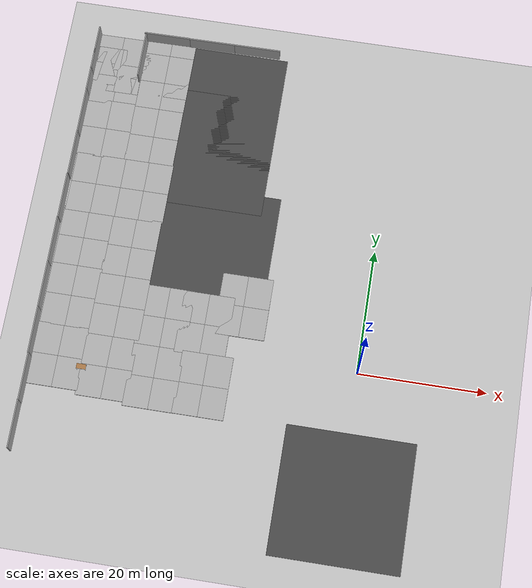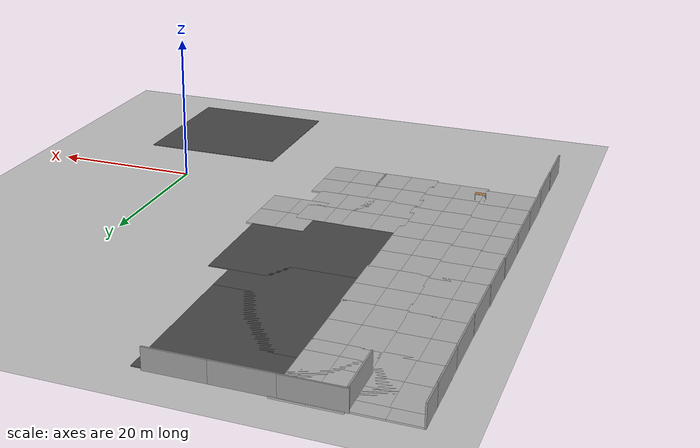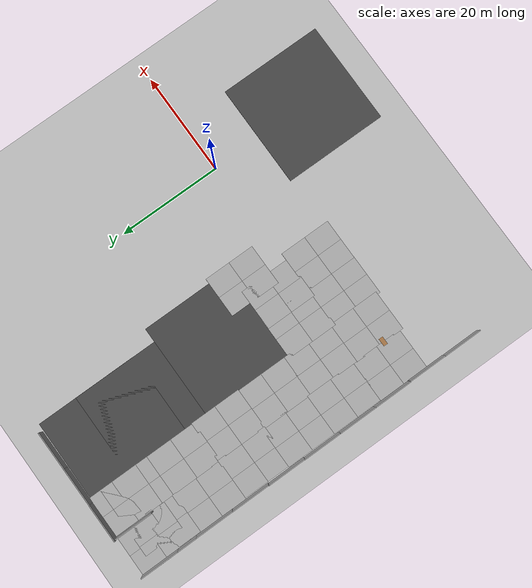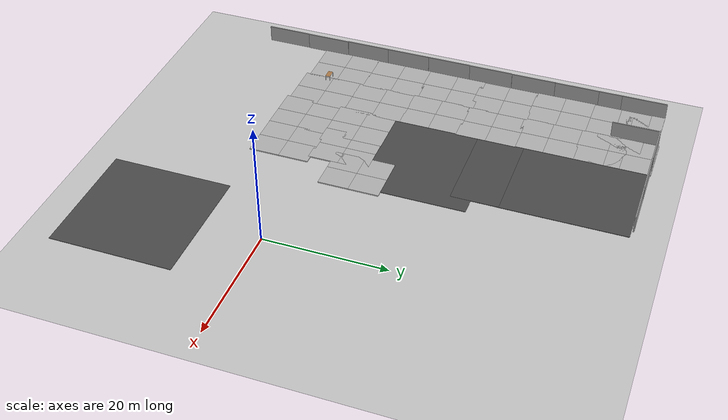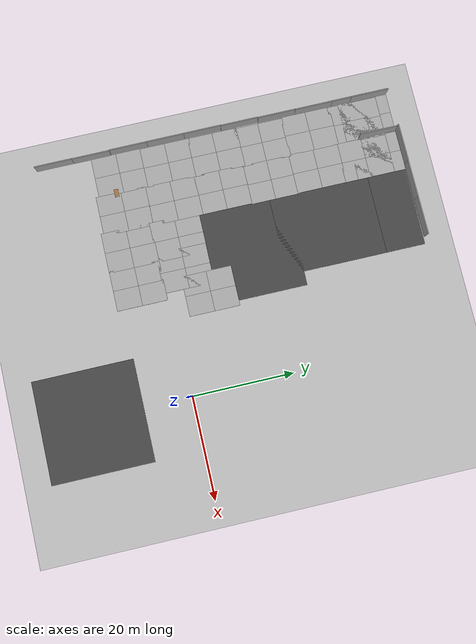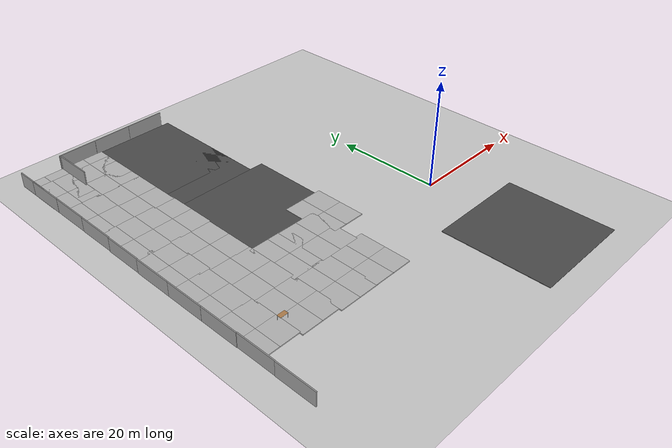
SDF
<sdf version="1.6">
 <world name="default">
  <model name="ground_plane">
   <static>1</static>
   <link name="link">
    <collision name="collision">
     <geometry><plane><normal>0 0 1</normal><size>100 100</size></plane></geometry>
     <surface><friction><ode><mu>100</mu><mu2>50</mu2></ode></friction></surface>
    </collision>
    <visual name="visual">
     <cast_shadows>0</cast_shadows>
     <geometry><plane><normal>0 0 1</normal><size>100 100</size></plane></geometry>
     <material>
      <script><uri>file://media/materials/scripts/gazebo.material</uri><name>Gazebo/Grey</name></script>
     </material>
    </visual>
   </link>
  </model>
  <model name="asphalt_plane">
   <static>1</static>
   <link name="link">
    <collision name="collision"><geometry><box><size>20 20 0.1</size></box></geometry></collision>
    <visual name="visual">
     <cast_shadows>0</cast_shadows>
     <geometry><box><size>20 20 0.1</size></box></geometry>
     <material>
      <script>
       <uri>model://asphalt_plane/materials/scripts</uri>
       <uri>model://asphalt_plane/materials/textures</uri>
       <name>vrc/asphalt</name>
      </script>
     </material>
    </visual>
   </link>
   <pose>0.46329 -19.4958 0 0 -0 0</pose>
  </model>
  <model name="mud_box_2_clone_16">
   <static>1</static>
   <link name="link">
    <collision name="collision"><geometry><box><size>8 10 0.2</size></box></geometry></collision>
    <visual name="visual_1">
     <pose>-2 2.5 0 0 -0 0</pose>
     <cast_shadows>0</cast_shadows>
     <geometry><box><size>4 5 0.2</size></box></geometry>
     <material>
      <script>
       <uri>model://mud_box/materials/scripts</uri>
       <uri>model://mud_box/materials/textures</uri>
       <name>vrc/mud</name>
      </script>
     </material>
    </visual>
    <visual name="visual_2">
     <pose>2 2.5 0 0 -0 0</pose>
     <cast_shadows>0</cast_shadows>
     <geometry><box><size>4 5 0.2</size></box></geometry>
     <material>
      <script>
       <uri>model://mud_box/materials/scripts</uri>
       <uri>model://mud_box/materials/textures</uri>
       <name>vrc/mud</name>
      </script>
     </material>
    </visual>
    <visual name="visual_3">
     <pose>2 -2.5 0 0 -0 0</pose>
     <cast_shadows>0</cast_shadows>
     <geometry><box><size>4 5 0.2</size></box></geometry>
     <material>
      <script>
       <uri>model://mud_box/materials/scripts</uri>
       <uri>model://mud_box/materials/textures</uri>
       <name>vrc/mud</name>
      </script>
     </material>
    </visual>
    <visual name="visual_4">
     <pose>-2 -2.5 0 0 -0 0</pose>
     <cast_shadows>0</cast_shadows>
     <geometry><box><size>4 5 0.2</size></box></geometry>
     <material>
      <script>
       <uri>model://mud_box/materials/scripts</uri>
       <uri>model://mud_box/materials/textures</uri>
       <name>vrc/mud</name>
      </script>
     </material>
    </visual>
   </link>
   <pose>-23.1666 -5.5652 0 0 -0 0</pose>
  </model>
  <model name="mud_box_5">
   <static>1</static>
   <link name="link">
    <collision name="collision"><geometry><box><size>8 10 0.2</size></box></geometry></collision>
    <visual name="visual_1">
     <pose>-2 2.5 0 0 -0 0</pose>
     <cast_shadows>0</cast_shadows>
     <geometry><box><size>4 5 0.2</size></box></geometry>
     <material>
      <script>
       <uri>model://mud_box/materials/scripts</uri>
       <uri>model://mud_box/materials/textures</uri>
       <name>vrc/mud</name>
      </script>
     </material>
    </visual>
    <visual name="visual_2">
     <pose>2 2.5 0 0 -0 0</pose>
     <cast_shadows>0</cast_shadows>
     <geometry><box><size>4 5 0.2</size></box></geometry>
     <material>
      <script>
       <uri>model://mud_box/materials/scripts</uri>
       <uri>model://mud_box/materials/textures</uri>
       <name>vrc/mud</name>
      </script>
     </material>
    </visual>
    <visual name="visual_3">
     <pose>2 -2.5 0 0 -0 0</pose>
     <cast_shadows>0</cast_shadows>
     <geometry><box><size>4 5 0.2</size></box></geometry>
     <material>
      <script>
       <uri>model://mud_box/materials/scripts</uri>
       <uri>model://mud_box/materials/textures</uri>
       <name>vrc/mud</name>
      </script>
     </material>
    </visual>
    <visual name="visual_4">
     <pose>-2 -2.5 0 0 -0 0</pose>
     <cast_shadows>0</cast_shadows>
     <geometry><box><size>4 5 0.2</size></box></geometry>
     <material>
      <script>
       <uri>model://mud_box/materials/scripts</uri>
       <uri>model://mud_box/materials/textures</uri>
       <name>vrc/mud</name>
      </script>
     </material>
    </visual>
   </link>
   <pose>-30.8349 -5.5936 0 0 -0 0</pose>
  </model>
  <model name="mud_box_5_clone_0">
   <static>1</static>
   <link name="link">
    <collision name="collision"><geometry><box><size>8 10 0.2</size></box></geometry></collision>
    <visual name="visual_1">
     <pose>-2 2.5 0 0 -0 0</pose>
     <cast_shadows>0</cast_shadows>
     <geometry><box><size>4 5 0.2</size></box></geometry>
     <material>
      <script>
       <uri>model://mud_box/materials/scripts</uri>
       <uri>model://mud_box/materials/textures</uri>
       <name>vrc/mud</name>
      </script>
     </material>
    </visual>
    <visual name="visual_2">
     <pose>2 2.5 0 0 -0 0</pose>
     <cast_shadows>0</cast_shadows>
     <geometry><box><size>4 5 0.2</size></box></geometry>
     <material>
      <script>
       <uri>model://mud_box/materials/scripts</uri>
       <uri>model://mud_box/materials/textures</uri>
       <name>vrc/mud</name>
      </script>
     </material>
    </visual>
    <visual name="visual_3">
     <pose>2 -2.5 0 0 -0 0</pose>
     <cast_shadows>0</cast_shadows>
     <geometry><box><size>4 5 0.2</size></box></geometry>
     <material>
      <script>
       <uri>model://mud_box/materials/scripts</uri>
       <uri>model://mud_box/materials/textures</uri>
       <name>vrc/mud</name>
      </script>
     </material>
    </visual>
    <visual name="visual_4">
     <pose>-2 -2.5 0 0 -0 0</pose>
     <cast_shadows>0</cast_shadows>
     <geometry><box><size>4 5 0.2</size></box></geometry>
     <material>
      <script>
       <uri>model://mud_box/materials/scripts</uri>
       <uri>model://mud_box/materials/textures</uri>
       <name>vrc/mud</name>
      </script>
     </material>
    </visual>
   </link>
   <pose>-46.0429 -4.43965 0 0 -0 0</pose>
  </model>
  <model name="mud_box_5_clone_1">
   <static>1</static>
   <link name="link">
    <collision name="collision"><geometry><box><size>8 10 0.2</size></box></geometry></collision>
    <visual name="visual_1">
     <pose>-2 2.5 0 0 -0 0</pose>
     <cast_shadows>0</cast_shadows>
     <geometry><box><size>4 5 0.2</size></box></geometry>
     <material>
      <script>
       <uri>model://mud_box/materials/scripts</uri>
       <uri>model://mud_box/materials/textures</uri>
       <name>vrc/mud</name>
      </script>
     </material>
    </visual>
    <visual name="visual_2">
     <pose>2 2.5 0 0 -0 0</pose>
     <cast_shadows>0</cast_shadows>
     <geometry><box><size>4 5 0.2</size></box></geometry>
     <material>
      <script>
       <uri>model://mud_box/materials/scripts</uri>
       <uri>model://mud_box/materials/textures</uri>
       <name>vrc/mud</name>
      </script>
     </material>
    </visual>
    <visual name="visual_3">
     <pose>2 -2.5 0 0 -0 0</pose>
     <cast_shadows>0</cast_shadows>
     <geometry><box><size>4 5 0.2</size></box></geometry>
     <material>
      <script>
       <uri>model://mud_box/materials/scripts</uri>
       <uri>model://mud_box/materials/textures</uri>
       <name>vrc/mud</name>
      </script>
     </material>
    </visual>
    <visual name="visual_4">
     <pose>-2 -2.5 0 0 -0 0</pose>
     <cast_shadows>0</cast_shadows>
     <geometry><box><size>4 5 0.2</size></box></geometry>
     <material>
      <script>
       <uri>model://mud_box/materials/scripts</uri>
       <uri>model://mud_box/materials/textures</uri>
       <name>vrc/mud</name>
      </script>
     </material>
    </visual>
   </link>
   <pose>-45.9576 5.44414 0 0 -0 0</pose>
  </model>
  <model name="mud_box_5_clone_2">
   <static>1</static>
   <link name="link">
    <collision name="collision"><geometry><box><size>8 10 0.2</size></box></geometry></collision>
    <visual name="visual_1">
     <pose>-2 2.5 0 0 -0 0</pose>
     <cast_shadows>0</cast_shadows>
     <geometry><box><size>4 5 0.2</size></box></geometry>
     <material>
      <script>
       <uri>model://mud_box/materials/scripts</uri>
       <uri>model://mud_box/materials/textures</uri>
       <name>vrc/mud</name>
      </script>
     </material>
    </visual>
    <visual name="visual_2">
     <pose>2 2.5 0 0 -0 0</pose>
     <cast_shadows>0</cast_shadows>
     <geometry><box><size>4 5 0.2</size></box></geometry>
     <material>
      <script>
       <uri>model://mud_box/materials/scripts</uri>
       <uri>model://mud_box/materials/textures</uri>
       <name>vrc/mud</name>
      </script>
     </material>
    </visual>
    <visual name="visual_3">
     <pose>2 -2.5 0 0 -0 0</pose>
     <cast_shadows>0</cast_shadows>
     <geometry><box><size>4 5 0.2</size></box></geometry>
     <material>
      <script>
       <uri>model://mud_box/materials/scripts</uri>
       <uri>model://mud_box/materials/textures</uri>
       <name>vrc/mud</name>
      </script>
     </material>
    </visual>
    <visual name="visual_4">
     <pose>-2 -2.5 0 0 -0 0</pose>
     <cast_shadows>0</cast_shadows>
     <geometry><box><size>4 5 0.2</size></box></geometry>
     <material>
      <script>
       <uri>model://mud_box/materials/scripts</uri>
       <uri>model://mud_box/materials/textures</uri>
       <name>vrc/mud</name>
      </script>
     </material>
    </visual>
   </link>
   <pose>-38.1608 4.8659 0 0 -0 0</pose>
  </model>
  <model name="mud_box_5_clone_3">
   <static>1</static>
   <link name="link">
    <collision name="collision"><geometry><box><size>8 10 0.2</size></box></geometry></collision>
    <visual name="visual_1">
     <pose>-2 2.5 0 0 -0 0</pose>
     <cast_shadows>0</cast_shadows>
     <geometry><box><size>4 5 0.2</size></box></geometry>
     <material>
      <script>
       <uri>model://mud_box/materials/scripts</uri>
       <uri>model://mud_box/materials/textures</uri>
       <name>vrc/mud</name>
      </script>
     </material>
    </visual>
    <visual name="visual_2">
     <pose>2 2.5 0 0 -0 0</pose>
     <cast_shadows>0</cast_shadows>
     <geometry><box><size>4 5 0.2</size></box></geometry>
     <material>
      <script>
       <uri>model://mud_box/materials/scripts</uri>
       <uri>model://mud_box/materials/textures</uri>
       <name>vrc/mud</name>
      </script>
     </material>
    </visual>
    <visual name="visual_3">
     <pose>2 -2.5 0 0 -0 0</pose>
     <cast_shadows>0</cast_shadows>
     <geometry><box><size>4 5 0.2</size></box></geometry>
     <material>
      <script>
       <uri>model://mud_box/materials/scripts</uri>
       <uri>model://mud_box/materials/textures</uri>
       <name>vrc/mud</name>
      </script>
     </material>
    </visual>
    <visual name="visual_4">
     <pose>-2 -2.5 0 0 -0 0</pose>
     <cast_shadows>0</cast_shadows>
     <geometry><box><size>4 5 0.2</size></box></geometry>
     <material>
      <script>
       <uri>model://mud_box/materials/scripts</uri>
       <uri>model://mud_box/materials/textures</uri>
       <name>vrc/mud</name>
      </script>
     </material>
    </visual>
   </link>
   <pose>-30.8215 4.10783 0 0 -0 0</pose>
  </model>
  <model name="mud_box_5_clone_4">
   <static>1</static>
   <link name="link">
    <collision name="collision"><geometry><box><size>8 10 0.2</size></box></geometry></collision>
    <visual name="visual_1">
     <pose>-2 2.5 0 0 -0 0</pose>
     <cast_shadows>0</cast_shadows>
     <geometry><box><size>4 5 0.2</size></box></geometry>
     <material>
      <script>
       <uri>model://mud_box/materials/scripts</uri>
       <uri>model://mud_box/materials/textures</uri>
       <name>vrc/mud</name>
      </script>
     </material>
    </visual>
    <visual name="visual_2">
     <pose>2 2.5 0 0 -0 0</pose>
     <cast_shadows>0</cast_shadows>
     <geometry><box><size>4 5 0.2</size></box></geometry>
     <material>
      <script>
       <uri>model://mud_box/materials/scripts</uri>
       <uri>model://mud_box/materials/textures</uri>
       <name>vrc/mud</name>
      </script>
     </material>
    </visual>
    <visual name="visual_3">
     <pose>2 -2.5 0 0 -0 0</pose>
     <cast_shadows>0</cast_shadows>
     <geometry><box><size>4 5 0.2</size></box></geometry>
     <material>
      <script>
       <uri>model://mud_box/materials/scripts</uri>
       <uri>model://mud_box/materials/textures</uri>
       <name>vrc/mud</name>
      </script>
     </material>
    </visual>
    <visual name="visual_4">
     <pose>-2 -2.5 0 0 -0 0</pose>
     <cast_shadows>0</cast_shadows>
     <geometry><box><size>4 5 0.2</size></box></geometry>
     <material>
      <script>
       <uri>model://mud_box/materials/scripts</uri>
       <uri>model://mud_box/materials/textures</uri>
       <name>vrc/mud</name>
      </script>
     </material>
    </visual>
   </link>
   <pose>-24.5157 4.05379 0 0 -0 0</pose>
  </model>
  <model name="mud_box_5_clone_1_clone">
   <static>1</static>
   <link name="link">
    <collision name="collision"><geometry><box><size>8 10 0.2</size></box></geometry></collision>
    <visual name="visual_1">
     <pose>-2 2.5 0 0 -0 0</pose>
     <cast_shadows>0</cast_shadows>
     <geometry><box><size>4 5 0.2</size></box></geometry>
     <material>
      <script>
       <uri>model://mud_box/materials/scripts</uri>
       <uri>model://mud_box/materials/textures</uri>
       <name>vrc/mud</name>
      </script>
     </material>
    </visual>
    <visual name="visual_2">
     <pose>2 2.5 0 0 -0 0</pose>
     <cast_shadows>0</cast_shadows>
     <geometry><box><size>4 5 0.2</size></box></geometry>
     <material>
      <script>
       <uri>model://mud_box/materials/scripts</uri>
       <uri>model://mud_box/materials/textures</uri>
       <name>vrc/mud</name>
      </script>
     </material>
    </visual>
    <visual name="visual_3">
     <pose>2 -2.5 0 0 -0 0</pose>
     <cast_shadows>0</cast_shadows>
     <geometry><box><size>4 5 0.2</size></box></geometry>
     <material>
      <script>
       <uri>model://mud_box/materials/scripts</uri>
       <uri>model://mud_box/materials/textures</uri>
       <name>vrc/mud</name>
      </script>
     </material>
    </visual>
    <visual name="visual_4">
     <pose>-2 -2.5 0 0 -0 0</pose>
     <cast_shadows>0</cast_shadows>
     <geometry><box><size>4 5 0.2</size></box></geometry>
     <material>
      <script>
       <uri>model://mud_box/materials/scripts</uri>
       <uri>model://mud_box/materials/textures</uri>
       <name>vrc/mud</name>
      </script>
     </material>
    </visual>
   </link>
   <pose>-45.9289 15.1657 0 0 -0 0</pose>
  </model>
  <model name="mud_box_5_clone_1_clone_0">
   <static>1</static>
   <link name="link">
    <collision name="collision"><geometry><box><size>8 10 0.2</size></box></geometry></collision>
    <visual name="visual_1">
     <pose>-2 2.5 0 0 -0 0</pose>
     <cast_shadows>0</cast_shadows>
     <geometry><box><size>4 5 0.2</size></box></geometry>
     <material>
      <script>
       <uri>model://mud_box/materials/scripts</uri>
       <uri>model://mud_box/materials/textures</uri>
       <name>vrc/mud</name>
      </script>
     </material>
    </visual>
    <visual name="visual_2">
     <pose>2 2.5 0 0 -0 0</pose>
     <cast_shadows>0</cast_shadows>
     <geometry><box><size>4 5 0.2</size></box></geometry>
     <material>
      <script>
       <uri>model://mud_box/materials/scripts</uri>
       <uri>model://mud_box/materials/textures</uri>
       <name>vrc/mud</name>
      </script>
     </material>
    </visual>
    <visual name="visual_3">
     <pose>2 -2.5 0 0 -0 0</pose>
     <cast_shadows>0</cast_shadows>
     <geometry><box><size>4 5 0.2</size></box></geometry>
     <material>
      <script>
       <uri>model://mud_box/materials/scripts</uri>
       <uri>model://mud_box/materials/textures</uri>
       <name>vrc/mud</name>
      </script>
     </material>
    </visual>
    <visual name="visual_4">
     <pose>-2 -2.5 0 0 -0 0</pose>
     <cast_shadows>0</cast_shadows>
     <geometry><box><size>4 5 0.2</size></box></geometry>
     <material>
      <script>
       <uri>model://mud_box/materials/scripts</uri>
       <uri>model://mud_box/materials/textures</uri>
       <name>vrc/mud</name>
      </script>
     </material>
    </visual>
   </link>
   <pose>-38.1705 14.7563 0 0 -0 0</pose>
  </model>
  <model name="mud_box_5_clone_1_clone_1">
   <static>1</static>
   <link name="link">
    <collision name="collision"><geometry><box><size>8 10 0.2</size></box></geometry></collision>
    <visual name="visual_1">
     <pose>-2 2.5 0 0 -0 0</pose>
     <cast_shadows>0</cast_shadows>
     <geometry><box><size>4 5 0.2</size></box></geometry>
     <material>
      <script>
       <uri>model://mud_box/materials/scripts</uri>
       <uri>model://mud_box/materials/textures</uri>
       <name>vrc/mud</name>
      </script>
     </material>
    </visual>
    <visual name="visual_2">
     <pose>2 2.5 0 0 -0 0</pose>
     <cast_shadows>0</cast_shadows>
     <geometry><box><size>4 5 0.2</size></box></geometry>
     <material>
      <script>
       <uri>model://mud_box/materials/scripts</uri>
       <uri>model://mud_box/materials/textures</uri>
       <name>vrc/mud</name>
      </script>
     </material>
    </visual>
    <visual name="visual_3">
     <pose>2 -2.5 0 0 -0 0</pose>
     <cast_shadows>0</cast_shadows>
     <geometry><box><size>4 5 0.2</size></box></geometry>
     <material>
      <script>
       <uri>model://mud_box/materials/scripts</uri>
       <uri>model://mud_box/materials/textures</uri>
       <name>vrc/mud</name>
      </script>
     </material>
    </visual>
    <visual name="visual_4">
     <pose>-2 -2.5 0 0 -0 0</pose>
     <cast_shadows>0</cast_shadows>
     <geometry><box><size>4 5 0.2</size></box></geometry>
     <material>
      <script>
       <uri>model://mud_box/materials/scripts</uri>
       <uri>model://mud_box/materials/textures</uri>
       <name>vrc/mud</name>
      </script>
     </material>
    </visual>
   </link>
   <pose>-38.0105 24.5085 0 0 -0 0</pose>
  </model>
  <model name="mud_box_5_clone_1_clone_2">
   <static>1</static>
   <link name="link">
    <collision name="collision"><geometry><box><size>8 10 0.2</size></box></geometry></collision>
    <visual name="visual_1">
     <pose>-2 2.5 0 0 -0 0</pose>
     <cast_shadows>0</cast_shadows>
     <geometry><box><size>4 5 0.2</size></box></geometry>
     <material>
      <script>
       <uri>model://mud_box/materials/scripts</uri>
       <uri>model://mud_box/materials/textures</uri>
       <name>vrc/mud</name>
      </script>
     </material>
    </visual>
    <visual name="visual_2">
     <pose>2 2.5 0 0 -0 0</pose>
     <cast_shadows>0</cast_shadows>
     <geometry><box><size>4 5 0.2</size></box></geometry>
     <material>
      <script>
       <uri>model://mud_box/materials/scripts</uri>
       <uri>model://mud_box/materials/textures</uri>
       <name>vrc/mud</name>
      </script>
     </material>
    </visual>
    <visual name="visual_3">
     <pose>2 -2.5 0 0 -0 0</pose>
     <cast_shadows>0</cast_shadows>
     <geometry><box><size>4 5 0.2</size></box></geometry>
     <material>
      <script>
       <uri>model://mud_box/materials/scripts</uri>
       <uri>model://mud_box/materials/textures</uri>
       <name>vrc/mud</name>
      </script>
     </material>
    </visual>
    <visual name="visual_4">
     <pose>-2 -2.5 0 0 -0 0</pose>
     <cast_shadows>0</cast_shadows>
     <geometry><box><size>4 5 0.2</size></box></geometry>
     <material>
      <script>
       <uri>model://mud_box/materials/scripts</uri>
       <uri>model://mud_box/materials/textures</uri>
       <name>vrc/mud</name>
      </script>
     </material>
    </visual>
   </link>
   <pose>-45.8143 24.5123 0 0 -0 0</pose>
  </model>
  <model name="mud_box_5_clone_1_clone_3">
   <static>1</static>
   <link name="link">
    <collision name="collision"><geometry><box><size>8 10 0.2</size></box></geometry></collision>
    <visual name="visual_1">
     <pose>-2 2.5 0 0 -0 0</pose>
     <cast_shadows>0</cast_shadows>
     <geometry><box><size>4 5 0.2</size></box></geometry>
     <material>
      <script>
       <uri>model://mud_box/materials/scripts</uri>
       <uri>model://mud_box/materials/textures</uri>
       <name>vrc/mud</name>
      </script>
     </material>
    </visual>
    <visual name="visual_2">
     <pose>2 2.5 0 0 -0 0</pose>
     <cast_shadows>0</cast_shadows>
     <geometry><box><size>4 5 0.2</size></box></geometry>
     <material>
      <script>
       <uri>model://mud_box/materials/scripts</uri>
       <uri>model://mud_box/materials/textures</uri>
       <name>vrc/mud</name>
      </script>
     </material>
    </visual>
    <visual name="visual_3">
     <pose>2 -2.5 0 0 -0 0</pose>
     <cast_shadows>0</cast_shadows>
     <geometry><box><size>4 5 0.2</size></box></geometry>
     <material>
      <script>
       <uri>model://mud_box/materials/scripts</uri>
       <uri>model://mud_box/materials/textures</uri>
       <name>vrc/mud</name>
      </script>
     </material>
    </visual>
    <visual name="visual_4">
     <pose>-2 -2.5 0 0 -0 0</pose>
     <cast_shadows>0</cast_shadows>
     <geometry><box><size>4 5 0.2</size></box></geometry>
     <material>
      <script>
       <uri>model://mud_box/materials/scripts</uri>
       <uri>model://mud_box/materials/textures</uri>
       <name>vrc/mud</name>
      </script>
     </material>
    </visual>
   </link>
   <pose>-46.0438 34.2972 0 0 -0 0</pose>
  </model>
  <model name="mud_box_5_clone_1_clone_4">
   <static>1</static>
   <link name="link">
    <collision name="collision"><geometry><box><size>8 10 0.2</size></box></geometry></collision>
    <visual name="visual_1">
     <pose>-2 2.5 0 0 -0 0</pose>
     <cast_shadows>0</cast_shadows>
     <geometry><box><size>4 5 0.2</size></box></geometry>
     <material>
      <script>
       <uri>model://mud_box/materials/scripts</uri>
       <uri>model://mud_box/materials/textures</uri>
       <name>vrc/mud</name>
      </script>
     </material>
    </visual>
    <visual name="visual_2">
     <pose>2 2.5 0 0 -0 0</pose>
     <cast_shadows>0</cast_shadows>
     <geometry><box><size>4 5 0.2</size></box></geometry>
     <material>
      <script>
       <uri>model://mud_box/materials/scripts</uri>
       <uri>model://mud_box/materials/textures</uri>
       <name>vrc/mud</name>
      </script>
     </material>
    </visual>
    <visual name="visual_3">
     <pose>2 -2.5 0 0 -0 0</pose>
     <cast_shadows>0</cast_shadows>
     <geometry><box><size>4 5 0.2</size></box></geometry>
     <material>
      <script>
       <uri>model://mud_box/materials/scripts</uri>
       <uri>model://mud_box/materials/textures</uri>
       <name>vrc/mud</name>
      </script>
     </material>
    </visual>
    <visual name="visual_4">
     <pose>-2 -2.5 0 0 -0 0</pose>
     <cast_shadows>0</cast_shadows>
     <geometry><box><size>4 5 0.2</size></box></geometry>
     <material>
      <script>
       <uri>model://mud_box/materials/scripts</uri>
       <uri>model://mud_box/materials/textures</uri>
       <name>vrc/mud</name>
      </script>
     </material>
    </visual>
   </link>
   <pose>-38.1404 34.0458 0 0 -0 0</pose>
  </model>
  <model name="mud_box_5_clone_1_clone_5">
   <static>1</static>
   <link name="link">
    <collision name="collision"><geometry><box><size>8 10 0.2</size></box></geometry></collision>
    <visual name="visual_1">
     <pose>-2 2.5 0 0 -0 0</pose>
     <cast_shadows>0</cast_shadows>
     <geometry><box><size>4 5 0.2</size></box></geometry>
     <material>
      <script>
       <uri>model://mud_box/materials/scripts</uri>
       <uri>model://mud_box/materials/textures</uri>
       <name>vrc/mud</name>
      </script>
     </material>
    </visual>
    <visual name="visual_2">
     <pose>2 2.5 0 0 -0 0</pose>
     <cast_shadows>0</cast_shadows>
     <geometry><box><size>4 5 0.2</size></box></geometry>
     <material>
      <script>
       <uri>model://mud_box/materials/scripts</uri>
       <uri>model://mud_box/materials/textures</uri>
       <name>vrc/mud</name>
      </script>
     </material>
    </visual>
    <visual name="visual_3">
     <pose>2 -2.5 0 0 -0 0</pose>
     <cast_shadows>0</cast_shadows>
     <geometry><box><size>4 5 0.2</size></box></geometry>
     <material>
      <script>
       <uri>model://mud_box/materials/scripts</uri>
       <uri>model://mud_box/materials/textures</uri>
       <name>vrc/mud</name>
      </script>
     </material>
    </visual>
    <visual name="visual_4">
     <pose>-2 -2.5 0 0 -0 0</pose>
     <cast_shadows>0</cast_shadows>
     <geometry><box><size>4 5 0.2</size></box></geometry>
     <material>
      <script>
       <uri>model://mud_box/materials/scripts</uri>
       <uri>model://mud_box/materials/textures</uri>
       <name>vrc/mud</name>
      </script>
     </material>
    </visual>
   </link>
   <pose>-38.1282 43.8196 0 0 -0 0</pose>
  </model>
  <model name="mud_box_5_clone_1_clone_6">
   <static>1</static>
   <link name="link">
    <collision name="collision"><geometry><box><size>8 10 0.2</size></box></geometry></collision>
    <visual name="visual_1">
     <pose>-2 2.5 0 0 -0 0</pose>
     <cast_shadows>0</cast_shadows>
     <geometry><box><size>4 5 0.2</size></box></geometry>
     <material>
      <script>
       <uri>model://mud_box/materials/scripts</uri>
       <uri>model://mud_box/materials/textures</uri>
       <name>vrc/mud</name>
      </script>
     </material>
    </visual>
    <visual name="visual_2">
     <pose>2 2.5 0 0 -0 0</pose>
     <cast_shadows>0</cast_shadows>
     <geometry><box><size>4 5 0.2</size></box></geometry>
     <material>
      <script>
       <uri>model://mud_box/materials/scripts</uri>
       <uri>model://mud_box/materials/textures</uri>
       <name>vrc/mud</name>
      </script>
     </material>
    </visual>
    <visual name="visual_3">
     <pose>2 -2.5 0 0 -0 0</pose>
     <cast_shadows>0</cast_shadows>
     <geometry><box><size>4 5 0.2</size></box></geometry>
     <material>
      <script>
       <uri>model://mud_box/materials/scripts</uri>
       <uri>model://mud_box/materials/textures</uri>
       <name>vrc/mud</name>
      </script>
     </material>
    </visual>
    <visual name="visual_4">
     <pose>-2 -2.5 0 0 -0 0</pose>
     <cast_shadows>0</cast_shadows>
     <geometry><box><size>4 5 0.2</size></box></geometry>
     <material>
      <script>
       <uri>model://mud_box/materials/scripts</uri>
       <uri>model://mud_box/materials/textures</uri>
       <name>vrc/mud</name>
      </script>
     </material>
    </visual>
   </link>
   <pose>-45.8976 43.8224 0 0 -0 0</pose>
  </model>
  <model name="mud_box_5_clone_1_clone_7">
   <static>1</static>
   <link name="link">
    <collision name="collision"><geometry><box><size>8 10 0.2</size></box></geometry></collision>
    <visual name="visual_1">
     <pose>-2 2.5 0 0 -0 0</pose>
     <cast_shadows>0</cast_shadows>
     <geometry><box><size>4 5 0.2</size></box></geometry>
     <material>
      <script>
       <uri>model://mud_box/materials/scripts</uri>
       <uri>model://mud_box/materials/textures</uri>
       <name>vrc/mud</name>
      </script>
     </material>
    </visual>
    <visual name="visual_2">
     <pose>2 2.5 0 0 -0 0</pose>
     <cast_shadows>0</cast_shadows>
     <geometry><box><size>4 5 0.2</size></box></geometry>
     <material>
      <script>
       <uri>model://mud_box/materials/scripts</uri>
       <uri>model://mud_box/materials/textures</uri>
       <name>vrc/mud</name>
      </script>
     </material>
    </visual>
    <visual name="visual_3">
     <pose>2 -2.5 0 0 -0 0</pose>
     <cast_shadows>0</cast_shadows>
     <geometry><box><size>4 5 0.2</size></box></geometry>
     <material>
      <script>
       <uri>model://mud_box/materials/scripts</uri>
       <uri>model://mud_box/materials/textures</uri>
       <name>vrc/mud</name>
      </script>
     </material>
    </visual>
    <visual name="visual_4">
     <pose>-2 -2.5 0 0 -0 0</pose>
     <cast_shadows>0</cast_shadows>
     <geometry><box><size>4 5 0.2</size></box></geometry>
     <material>
      <script>
       <uri>model://mud_box/materials/scripts</uri>
       <uri>model://mud_box/materials/textures</uri>
       <name>vrc/mud</name>
      </script>
     </material>
    </visual>
   </link>
   <pose>-46.1676 46.0228 0 0 -0 0</pose>
  </model>
  <model name="mud_box_5_clone_1_clone_8">
   <static>1</static>
   <link name="link">
    <collision name="collision"><geometry><box><size>8 10 0.2</size></box></geometry></collision>
    <visual name="visual_1">
     <pose>-2 2.5 0 0 -0 0</pose>
     <cast_shadows>0</cast_shadows>
     <geometry><box><size>4 5 0.2</size></box></geometry>
     <material>
      <script>
       <uri>model://mud_box/materials/scripts</uri>
       <uri>model://mud_box/materials/textures</uri>
       <name>vrc/mud</name>
      </script>
     </material>
    </visual>
    <visual name="visual_2">
     <pose>2 2.5 0 0 -0 0</pose>
     <cast_shadows>0</cast_shadows>
     <geometry><box><size>4 5 0.2</size></box></geometry>
     <material>
      <script>
       <uri>model://mud_box/materials/scripts</uri>
       <uri>model://mud_box/materials/textures</uri>
       <name>vrc/mud</name>
      </script>
     </material>
    </visual>
    <visual name="visual_3">
     <pose>2 -2.5 0 0 -0 0</pose>
     <cast_shadows>0</cast_shadows>
     <geometry><box><size>4 5 0.2</size></box></geometry>
     <material>
      <script>
       <uri>model://mud_box/materials/scripts</uri>
       <uri>model://mud_box/materials/textures</uri>
       <name>vrc/mud</name>
      </script>
     </material>
    </visual>
    <visual name="visual_4">
     <pose>-2 -2.5 0 0 -0 0</pose>
     <cast_shadows>0</cast_shadows>
     <geometry><box><size>4 5 0.2</size></box></geometry>
     <material>
      <script>
       <uri>model://mud_box/materials/scripts</uri>
       <uri>model://mud_box/materials/textures</uri>
       <name>vrc/mud</name>
      </script>
     </material>
    </visual>
   </link>
   <pose>-38.1143 46.3826 0 0 -0 0</pose>
  </model>
  <model name="mud_box_5_clone_4_clone_2">
   <static>1</static>
   <link name="link">
    <collision name="collision"><geometry><box><size>8 10 0.2</size></box></geometry></collision>
    <visual name="visual_1">
     <pose>-2 2.5 0 0 -0 0</pose>
     <cast_shadows>0</cast_shadows>
     <geometry><box><size>4 5 0.2</size></box></geometry>
     <material>
      <script>
       <uri>model://mud_box/materials/scripts</uri>
       <uri>model://mud_box/materials/textures</uri>
       <name>vrc/mud</name>
      </script>
     </material>
    </visual>
    <visual name="visual_2">
     <pose>2 2.5 0 0 -0 0</pose>
     <cast_shadows>0</cast_shadows>
     <geometry><box><size>4 5 0.2</size></box></geometry>
     <material>
      <script>
       <uri>model://mud_box/materials/scripts</uri>
       <uri>model://mud_box/materials/textures</uri>
       <name>vrc/mud</name>
      </script>
     </material>
    </visual>
    <visual name="visual_3">
     <pose>2 -2.5 0 0 -0 0</pose>
     <cast_shadows>0</cast_shadows>
     <geometry><box><size>4 5 0.2</size></box></geometry>
     <material>
      <script>
       <uri>model://mud_box/materials/scripts</uri>
       <uri>model://mud_box/materials/textures</uri>
       <name>vrc/mud</name>
      </script>
     </material>
    </visual>
    <visual name="visual_4">
     <pose>-2 -2.5 0 0 -0 0</pose>
     <cast_shadows>0</cast_shadows>
     <geometry><box><size>4 5 0.2</size></box></geometry>
     <material>
      <script>
       <uri>model://mud_box/materials/scripts</uri>
       <uri>model://mud_box/materials/textures</uri>
       <name>vrc/mud</name>
      </script>
     </material>
    </visual>
   </link>
   <pose>-19.0127 7.89213 0 0 -0 0</pose>
  </model>
  <model name="asphalt_plane_0_clone">
   <static>1</static>
   <link name="link">
    <collision name="collision"><geometry><box><size>20 20 0.1</size></box></geometry></collision>
    <visual name="visual">
     <cast_shadows>0</cast_shadows>
     <geometry><box><size>20 20 0.1</size></box></geometry>
     <material>
      <script>
       <uri>model://asphalt_plane/materials/scripts</uri>
       <uri>model://asphalt_plane/materials/textures</uri>
       <name>vrc/asphalt</name>
      </script>
     </material>
    </visual>
   </link>
   <pose>-25.9708 16.5518 0 0 -0 0</pose>
  </model>
  <model name="asphalt_plane_0_clone_0">
   <static>1</static>
   <link name="link">
    <collision name="collision"><geometry><box><size>20 20 0.1</size></box></geometry></collision>
    <visual name="visual">
     <cast_shadows>0</cast_shadows>
     <geometry><box><size>20 20 0.1</size></box></geometry>
     <material>
      <script>
       <uri>model://asphalt_plane/materials/scripts</uri>
       <uri>model://asphalt_plane/materials/textures</uri>
       <name>vrc/asphalt</name>
      </script>
     </material>
    </visual>
   </link>
   <pose>-28.7027 33.2491 0 0 -0 0</pose>
  </model>
  <model name="asphalt_plane_0_clone_1">
   <static>1</static>
   <link name="link">
    <collision name="collision"><geometry><box><size>20 20 0.1</size></box></geometry></collision>
    <visual name="visual">
     <cast_shadows>0</cast_shadows>
     <geometry><box><size>20 20 0.1</size></box></geometry>
     <material>
      <script>
       <uri>model://asphalt_plane/materials/scripts</uri>
       <uri>model://asphalt_plane/materials/textures</uri>
       <name>vrc/asphalt</name>
      </script>
     </material>
    </visual>
   </link>
   <pose>-28.6779 40.9545 0 0 -0 0</pose>
  </model>
  <model name="mud_box_5_clone_0_clone">
   <static>1</static>
   <link name="link">
    <collision name="collision"><geometry><box><size>8 10 0.2</size></box></geometry></collision>
    <visual name="visual_1">
     <pose>-2 2.5 0 0 -0 0</pose>
     <cast_shadows>0</cast_shadows>
     <geometry><box><size>4 5 0.2</size></box></geometry>
     <material>
      <script>
       <uri>model://mud_box/materials/scripts</uri>
       <uri>model://mud_box/materials/textures</uri>
       <name>vrc/mud</name>
      </script>
     </material>
    </visual>
    <visual name="visual_2">
     <pose>2 2.5 0 0 -0 0</pose>
     <cast_shadows>0</cast_shadows>
     <geometry><box><size>4 5 0.2</size></box></geometry>
     <material>
      <script>
       <uri>model://mud_box/materials/scripts</uri>
       <uri>model://mud_box/materials/textures</uri>
       <name>vrc/mud</name>
      </script>
     </material>
    </visual>
    <visual name="visual_3">
     <pose>2 -2.5 0 0 -0 0</pose>
     <cast_shadows>0</cast_shadows>
     <geometry><box><size>4 5 0.2</size></box></geometry>
     <material>
      <script>
       <uri>model://mud_box/materials/scripts</uri>
       <uri>model://mud_box/materials/textures</uri>
       <name>vrc/mud</name>
      </script>
     </material>
    </visual>
    <visual name="visual_4">
     <pose>-2 -2.5 0 0 -0 0</pose>
     <cast_shadows>0</cast_shadows>
     <geometry><box><size>4 5 0.2</size></box></geometry>
     <material>
      <script>
       <uri>model://mud_box/materials/scripts</uri>
       <uri>model://mud_box/materials/textures</uri>
       <name>vrc/mud</name>
      </script>
     </material>
    </visual>
   </link>
   <pose>-38.2567 -5.07177 0 0 -0 0</pose>
  </model>
  <model name="table">
   <static>1</static>
   <link name="link">
    <collision name="surface">
     <pose>0 0 1 0 -0 0</pose>
     <geometry><box><size>1.5 0.8 0.03</size></box></geometry>
     <surface><friction><ode><mu>0.6</mu><mu2>0.6</mu2></ode></friction></surface>
    </collision>
    <visual name="visual1">
     <pose>0 0 1 0 -0 0</pose>
     <geometry><box><size>1.5 0.8 0.03</size></box></geometry>
     <material>
      <script><uri>file://media/materials/scripts/gazebo.material</uri><name>Gazebo/Wood</name></script>
     </material>
    </visual>
    <collision name="front_left_leg">
     <pose>0.68 0.38 0.5 0 -0 0</pose>
     <geometry><cylinder><radius>0.02</radius><length>1</length></cylinder></geometry>
    </collision>
    <visual name="front_left_leg">
     <pose>0.68 0.38 0.5 0 -0 0</pose>
     <geometry><cylinder><radius>0.02</radius><length>1</length></cylinder></geometry>
     <material>
      <script><uri>file://media/materials/scripts/gazebo.material</uri><name>Gazebo/Grey</name></script>
     </material>
    </visual>
    <collision name="front_right_leg">
     <pose>0.68 -0.38 0.5 0 -0 0</pose>
     <geometry><cylinder><radius>0.02</radius><length>1</length></cylinder></geometry>
    </collision>
    <visual name="front_right_leg">
     <pose>0.68 -0.38 0.5 0 -0 0</pose>
     <geometry><cylinder><radius>0.02</radius><length>1</length></cylinder></geometry>
     <material>
      <script><uri>file://media/materials/scripts/gazebo.material</uri><name>Gazebo/Grey</name></script>
     </material>
    </visual>
    <collision name="back_right_leg">
     <pose>-0.68 -0.38 0.5 0 -0 0</pose>
     <geometry><cylinder><radius>0.02</radius><length>1</length></cylinder></geometry>
    </collision>
    <visual name="back_right_leg">
     <pose>-0.68 -0.38 0.5 0 -0 0</pose>
     <geometry><cylinder><radius>0.02</radius><length>1</length></cylinder></geometry>
     <material>
      <script><uri>file://media/materials/scripts/gazebo.material</uri><name>Gazebo/Grey</name></script>
     </material>
    </visual>
    <collision name="back_left_leg">
     <pose>-0.68 0.38 0.5 0 -0 0</pose>
     <geometry><cylinder><radius>0.02</radius><length>1</length></cylinder></geometry>
    </collision>
    <visual name="back_left_leg">
     <pose>-0.68 0.38 0.5 0 -0 0</pose>
     <geometry><cylinder><radius>0.02</radius><length>1</length></cylinder></geometry>
     <material>
      <script><uri>file://media/materials/scripts/gazebo.material</uri><name>Gazebo/Grey</name></script>
     </material>
    </visual>
   </link>
   <pose>-41.9878 -5.79148 0 0 -0 0</pose>
  </model>
  <model name="grey_wall_clone_1_clone_4_clone_clone_0_clone">
   <static>1</static>
   <link name="link">
    <pose>0 0 1.4 0 -0 0</pose>
    <collision name="collision"><geometry><box><size>7.5 0.2 2.8</size></box></geometry></collision>
    <visual name="visual">
     <cast_shadows>0</cast_shadows>
     <geometry><box><size>7.5 0.2 2.8</size></box></geometry>
     <material>
      <script>
       <uri>model://grey_wall/materials/scripts</uri>
       <uri>model://grey_wall/materials/textures</uri>
       <name>vrc/grey_wall</name>
      </script>
     </material>
    </visual>
   </link>
   <pose>-50.1072 -16.4925 0 0 0 -1.56928</pose>
  </model>
  <model name="grey_wall_clone_1_clone_4_clone_clone_0_clone_0">
   <static>1</static>
   <link name="link">
    <pose>0 0 1.4 0 -0 0</pose>
    <collision name="collision"><geometry><box><size>7.5 0.2 2.8</size></box></geometry></collision>
    <visual name="visual">
     <cast_shadows>0</cast_shadows>
     <geometry><box><size>7.5 0.2 2.8</size></box></geometry>
     <material>
      <script>
       <uri>model://grey_wall/materials/scripts</uri>
       <uri>model://grey_wall/materials/textures</uri>
       <name>vrc/grey_wall</name>
      </script>
     </material>
    </visual>
   </link>
   <pose>-50.0765 -9.03684 0 0 0 -1.56928</pose>
  </model>
  <model name="grey_wall_clone_1_clone_4_clone_clone_0_clone_1">
   <static>1</static>
   <link name="link">
    <pose>0 0 1.4 0 -0 0</pose>
    <collision name="collision"><geometry><box><size>7.5 0.2 2.8</size></box></geometry></collision>
    <visual name="visual">
     <cast_shadows>0</cast_shadows>
     <geometry><box><size>7.5 0.2 2.8</size></box></geometry>
     <material>
      <script>
       <uri>model://grey_wall/materials/scripts</uri>
       <uri>model://grey_wall/materials/textures</uri>
       <name>vrc/grey_wall</name>
      </script>
     </material>
    </visual>
   </link>
   <pose>-50.1663 -1.57125 0 0 0 -1.56928</pose>
  </model>
  <model name="grey_wall_clone_1_clone_4_clone_clone_0_clone_2">
   <static>1</static>
   <link name="link">
    <pose>0 0 1.4 0 -0 0</pose>
    <collision name="collision"><geometry><box><size>7.5 0.2 2.8</size></box></geometry></collision>
    <visual name="visual">
     <cast_shadows>0</cast_shadows>
     <geometry><box><size>7.5 0.2 2.8</size></box></geometry>
     <material>
      <script>
       <uri>model://grey_wall/materials/scripts</uri>
       <uri>model://grey_wall/materials/textures</uri>
       <name>vrc/grey_wall</name>
      </script>
     </material>
    </visual>
   </link>
   <pose>-50.1846 5.88917 0 0 0 -1.56928</pose>
  </model>
  <model name="grey_wall_clone_1_clone_4_clone_clone_0_clone_3">
   <static>1</static>
   <link name="link">
    <pose>0 0 1.4 0 -0 0</pose>
    <collision name="collision"><geometry><box><size>7.5 0.2 2.8</size></box></geometry></collision>
    <visual name="visual">
     <cast_shadows>0</cast_shadows>
     <geometry><box><size>7.5 0.2 2.8</size></box></geometry>
     <material>
      <script>
       <uri>model://grey_wall/materials/scripts</uri>
       <uri>model://grey_wall/materials/textures</uri>
       <name>vrc/grey_wall</name>
      </script>
     </material>
    </visual>
   </link>
   <pose>-50.1905 13.3986 0 0 0 -1.56928</pose>
  </model>
  <model name="grey_wall_clone_1_clone_4_clone_clone_0_clone_4">
   <static>1</static>
   <link name="link">
    <pose>0 0 1.4 0 -0 0</pose>
    <collision name="collision"><geometry><box><size>7.5 0.2 2.8</size></box></geometry></collision>
    <visual name="visual">
     <cast_shadows>0</cast_shadows>
     <geometry><box><size>7.5 0.2 2.8</size></box></geometry>
     <material>
      <script>
       <uri>model://grey_wall/materials/scripts</uri>
       <uri>model://grey_wall/materials/textures</uri>
       <name>vrc/grey_wall</name>
      </script>
     </material>
    </visual>
   </link>
   <pose>-50.1437 20.8408 0 0 0 -1.56928</pose>
  </model>
  <model name="grey_wall_clone_1_clone_4_clone_clone_0_clone_5">
   <static>1</static>
   <link name="link">
    <pose>0 0 1.4 0 -0 0</pose>
    <collision name="collision"><geometry><box><size>7.5 0.2 2.8</size></box></geometry></collision>
    <visual name="visual">
     <cast_shadows>0</cast_shadows>
     <geometry><box><size>7.5 0.2 2.8</size></box></geometry>
     <material>
      <script>
       <uri>model://grey_wall/materials/scripts</uri>
       <uri>model://grey_wall/materials/textures</uri>
       <name>vrc/grey_wall</name>
      </script>
     </material>
    </visual>
   </link>
   <pose>-50.0733 28.3792 0 0 0 -1.56928</pose>
  </model>
  <model name="grey_wall_clone_1_clone_4_clone_clone_0_clone_6">
   <static>1</static>
   <link name="link">
    <pose>0 0 1.4 0 -0 0</pose>
    <collision name="collision"><geometry><box><size>7.5 0.2 2.8</size></box></geometry></collision>
    <visual name="visual">
     <cast_shadows>0</cast_shadows>
     <geometry><box><size>7.5 0.2 2.8</size></box></geometry>
     <material>
      <script>
       <uri>model://grey_wall/materials/scripts</uri>
       <uri>model://grey_wall/materials/textures</uri>
       <name>vrc/grey_wall</name>
      </script>
     </material>
    </visual>
   </link>
   <pose>-50.0598 35.8891 0 0 0 -1.56928</pose>
  </model>
  <model name="grey_wall_clone_1_clone_4_clone_clone_0_clone_7">
   <static>1</static>
   <link name="link">
    <pose>0 0 1.4 0 -0 0</pose>
    <collision name="collision"><geometry><box><size>7.5 0.2 2.8</size></box></geometry></collision>
    <visual name="visual">
     <cast_shadows>0</cast_shadows>
     <geometry><box><size>7.5 0.2 2.8</size></box></geometry>
     <material>
      <script>
       <uri>model://grey_wall/materials/scripts</uri>
       <uri>model://grey_wall/materials/textures</uri>
       <name>vrc/grey_wall</name>
      </script>
     </material>
    </visual>
   </link>
   <pose>-50.0885 43.3702 0 0 0 -1.56928</pose>
  </model>
  <model name="grey_wall_clone_1_clone_4_clone_clone_0_clone_8">
   <static>1</static>
   <link name="link">
    <pose>0 0 1.4 0 -0 0</pose>
    <collision name="collision"><geometry><box><size>7.5 0.2 2.8</size></box></geometry></collision>
    <visual name="visual">
     <cast_shadows>0</cast_shadows>
     <geometry><box><size>7.5 0.2 2.8</size></box></geometry>
     <material>
      <script>
       <uri>model://grey_wall/materials/scripts</uri>
       <uri>model://grey_wall/materials/textures</uri>
       <name>vrc/grey_wall</name>
      </script>
     </material>
    </visual>
   </link>
   <pose>-50.0874 47.2859 0 0 0 -1.56928</pose>
  </model>
  <model name="grey_wall_clone_1_clone_4_clone_clone_0_clone_9">
   <static>1</static>
   <link name="link">
    <pose>0 0 1.4 0 -0 0</pose>
    <collision name="collision"><geometry><box><size>7.5 0.2 2.8</size></box></geometry></collision>
    <visual name="visual">
     <cast_shadows>0</cast_shadows>
     <geometry><box><size>7.5 0.2 2.8</size></box></geometry>
     <material>
      <script>
       <uri>model://grey_wall/materials/scripts</uri>
       <uri>model://grey_wall/materials/textures</uri>
       <name>vrc/grey_wall</name>
      </script>
     </material>
    </visual>
   </link>
   <pose>-42.3113 47.1556 0 0 0 -1.56928</pose>
  </model>
  <model name="grey_wall_clone_1_clone_4_clone_clone_0_clone_9_clone">
   <static>1</static>
   <link name="link">
    <pose>0 0 1.4 0 -0 0</pose>
    <collision name="collision"><geometry><box><size>7.5 0.2 2.8</size></box></geometry></collision>
    <visual name="visual">
     <cast_shadows>0</cast_shadows>
     <geometry><box><size>7.5 0.2 2.8</size></box></geometry>
     <material>
      <script>
       <uri>model://grey_wall/materials/scripts</uri>
       <uri>model://grey_wall/materials/textures</uri>
       <name>vrc/grey_wall</name>
      </script>
     </material>
    </visual>
   </link>
   <pose>-38.7996 51.1472 0 0 0 -3.13391</pose>
  </model>
  <model name="grey_wall_clone_1_clone_4_clone_clone_0_clone_9_clone_0">
   <static>1</static>
   <link name="link">
    <pose>0 0 1.4 0 -0 0</pose>
    <collision name="collision"><geometry><box><size>7.5 0.2 2.8</size></box></geometry></collision>
    <visual name="visual">
     <cast_shadows>0</cast_shadows>
     <geometry><box><size>7.5 0.2 2.8</size></box></geometry>
     <material>
      <script>
       <uri>model://grey_wall/materials/scripts</uri>
       <uri>model://grey_wall/materials/textures</uri>
       <name>vrc/grey_wall</name>
      </script>
     </material>
    </visual>
   </link>
   <pose>-31.2958 51.1673 0 0 0 -3.13391</pose>
  </model>
  <model name="grey_wall_clone_1_clone_4_clone_clone_0_clone_9_clone_1">
   <static>1</static>
   <link name="link">
    <pose>0 0 1.4 0 -0 0</pose>
    <collision name="collision"><geometry><box><size>7.5 0.2 2.8</size></box></geometry></collision>
    <visual name="visual">
     <cast_shadows>0</cast_shadows>
     <geometry><box><size>7.5 0.2 2.8</size></box></geometry>
     <material>
      <script>
       <uri>model://grey_wall/materials/scripts</uri>
       <uri>model://grey_wall/materials/textures</uri>
       <name>vrc/grey_wall</name>
      </script>
     </material>
    </visual>
   </link>
   <pose>-23.8292 51.2187 0 0 0 -3.13391</pose>
  </model>
 </world>
</sdf>
